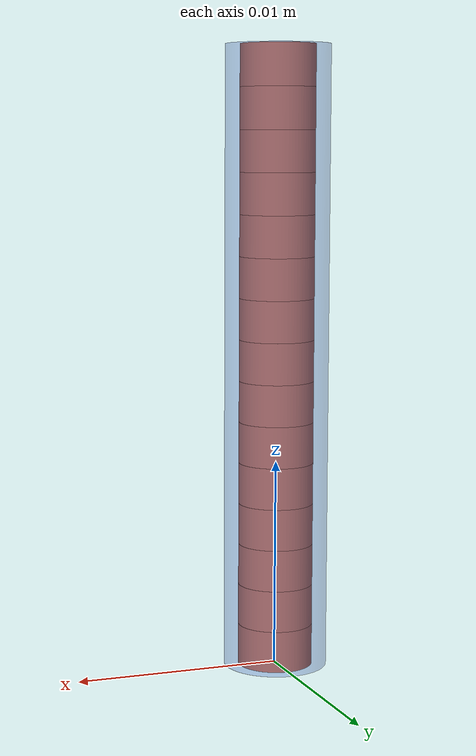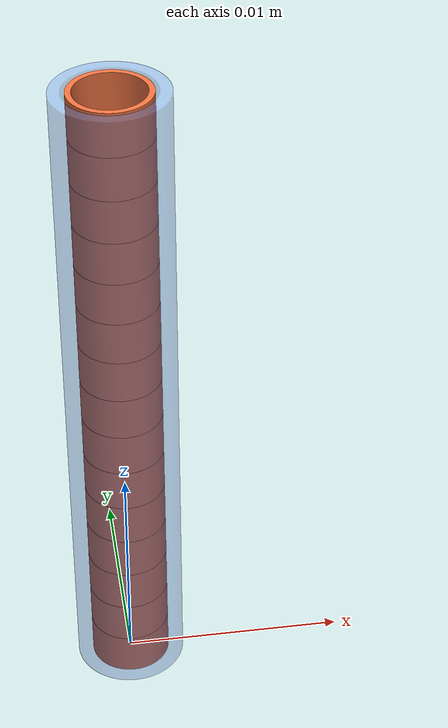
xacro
<?xml version="1.0"?>
        <robot xmlns:xacro="http://www.ros.org/wiki/xacro" name="ctr">
          <xacro:property name="outer_length" value="0.030000"/>
          <xacro:property name="inner_length" value="0.030000"/>
          <xacro:property name="outer_inner_diameter" value="0.004000"/>
          <xacro:property name="outer_outer_diameter" value="0.005000"/>
          <xacro:property name="inner_inner_diameter" value="0.003100"/>
          <xacro:property name="inner_outer_diameter" value="0.003600"/>
          <xacro:property name="curvature_radius" value="0.050000"/>
          <xacro:property name="inner_segments" value="15"/>
          <xacro:property name="bend_angle_per_joint" value="0.04000000"/>

          <link name="world"/>

          <link name="outer_tube_link">
            <visual>
              <origin xyz="0 0 0" rpy="0 0 0"/>
              <geometry>
                <mesh filename="package://ctr_package/meshes/outer_tube.stl" scale="1 1 1"/>
              </geometry>
              <material name="outer_mat">
                <color rgba="0.35 0.55 0.95 0.35"/>
              </material>
            </visual>
            <collision>
              <origin xyz="0 0 0" rpy="0 0 0"/>
              <geometry>
                <mesh filename="package://ctr_package/meshes/outer_tube.stl" scale="1 1 1"/>
              </geometry>
            </collision>
            <inertial>
              <mass value="0.01"/>
              <origin xyz="0 0 0.015000" rpy="0 0 0"/>
              <inertia ixx="1e-4" iyy="1e-4" izz="1e-4" ixy="0" ixz="0" iyz="0"/>
            </inertial>
          </link>

          <link name="base_x_link"/>
          <link name="base_y_link"/>
          <link name="base_z_link"/>
          <link name="inner_carriage_link"/>
          <link name="inner_base_link"/>

          <joint name="base_x_joint" type="prismatic">
            <parent link="world"/>
            <child link="base_x_link"/>
            <origin xyz="0 0 0" rpy="0 0 0"/>
            <axis xyz="1 0 0"/>
            <limit lower="-2.0" upper="2.0" effort="10.0" velocity="0.2"/>
          </joint>

          <joint name="base_y_joint" type="prismatic">
            <parent link="base_x_link"/>
            <child link="base_y_link"/>
            <origin xyz="0 0 0" rpy="0 0 0"/>
            <axis xyz="0 1 0"/>
            <limit lower="-2.0" upper="2.0" effort="10.0" velocity="0.2"/>
          </joint>

          <joint name="base_z_joint" type="prismatic">
            <parent link="base_y_link"/>
            <child link="base_z_link"/>
            <origin xyz="0 0 0" rpy="0 0 0"/>
            <axis xyz="0 0 1"/>
            <limit lower="-2.0" upper="2.0" effort="10.0" velocity="0.2"/>
          </joint>

          <joint name="base_to_outer" type="fixed">
            <parent link="base_z_link"/>
            <child link="outer_tube_link"/>
            <origin xyz="0 0 0" rpy="0 0 0"/>
          </joint>

          <joint name="inner_insertion_joint" type="prismatic">
            <parent link="outer_tube_link"/>
            <child link="inner_carriage_link"/>
            <origin xyz="0 0 0" rpy="0 0 0"/>
            <axis xyz="0 0 1"/>
            <limit lower="0.0" upper="0.03" effort="10.0" velocity="0.05"/>
          </joint>

          <joint name="inner_rotation_joint" type="revolute">
            <parent link="inner_carriage_link"/>
            <child link="inner_base_link"/>
            <origin xyz="0 0 0" rpy="0 0 0"/>
            <axis xyz="0 0 1"/>
            <limit lower="-3.14159" upper="3.14159" effort="1.0" velocity="2.0"/>
          </joint>

          <link name="inner_segment_1">
            <visual>
              <origin xyz="0 0 0" rpy="0 0 0"/>
              <geometry>
                <mesh filename="package://ctr_package/meshes/inner_segment.stl" scale="1 1 1"/>
              </geometry>
              <material name="inner_mat">
                <color rgba="0.95 0.45 0.25 1.0"/>
              </material>
            </visual>
            <collision>
              <origin xyz="0 0 0" rpy="0 0 0"/>
              <geometry>
                <mesh filename="package://ctr_package/meshes/inner_segment.stl" scale="1 1 1"/>
              </geometry>
            </collision>
            <inertial>
              <mass value="0.0007"/>
              <origin xyz="0 0 0" rpy="0 0 0"/>
              <inertia ixx="1e-6" iyy="1e-6" izz="1e-6" ixy="0" ixz="0" iyz="0"/>
            </inertial>
          </link>

          <link name="inner_segment_2">
            <visual>
              <origin xyz="0 0 0" rpy="0 0 0"/>
              <geometry>
                <mesh filename="package://ctr_package/meshes/inner_segment.stl" scale="1 1 1"/>
              </geometry>
              <material name="inner_mat">
                <color rgba="0.95 0.45 0.25 1.0"/>
              </material>
            </visual>
            <collision>
              <origin xyz="0 0 0" rpy="0 0 0"/>
              <geometry>
                <mesh filename="package://ctr_package/meshes/inner_segment.stl" scale="1 1 1"/>
              </geometry>
            </collision>
            <inertial>
              <mass value="0.0007"/>
              <origin xyz="0 0 0" rpy="0 0 0"/>
              <inertia ixx="1e-6" iyy="1e-6" izz="1e-6" ixy="0" ixz="0" iyz="0"/>
            </inertial>
          </link>

          <link name="inner_segment_3">
            <visual>
              <origin xyz="0 0 0" rpy="0 0 0"/>
              <geometry>
                <mesh filename="package://ctr_package/meshes/inner_segment.stl" scale="1 1 1"/>
              </geometry>
              <material name="inner_mat">
                <color rgba="0.95 0.45 0.25 1.0"/>
              </material>
            </visual>
            <collision>
              <origin xyz="0 0 0" rpy="0 0 0"/>
              <geometry>
                <mesh filename="package://ctr_package/meshes/inner_segment.stl" scale="1 1 1"/>
              </geometry>
            </collision>
            <inertial>
              <mass value="0.0007"/>
              <origin xyz="0 0 0" rpy="0 0 0"/>
              <inertia ixx="1e-6" iyy="1e-6" izz="1e-6" ixy="0" ixz="0" iyz="0"/>
            </inertial>
          </link>

          <link name="inner_segment_4">
            <visual>
              <origin xyz="0 0 0" rpy="0 0 0"/>
              <geometry>
                <mesh filename="package://ctr_package/meshes/inner_segment.stl" scale="1 1 1"/>
              </geometry>
              <material name="inner_mat">
                <color rgba="0.95 0.45 0.25 1.0"/>
              </material>
            </visual>
            <collision>
              <origin xyz="0 0 0" rpy="0 0 0"/>
              <geometry>
                <mesh filename="package://ctr_package/meshes/inner_segment.stl" scale="1 1 1"/>
              </geometry>
            </collision>
            <inertial>
              <mass value="0.0007"/>
              <origin xyz="0 0 0" rpy="0 0 0"/>
              <inertia ixx="1e-6" iyy="1e-6" izz="1e-6" ixy="0" ixz="0" iyz="0"/>
            </inertial>
          </link>

          <link name="inner_segment_5">
            <visual>
              <origin xyz="0 0 0" rpy="0 0 0"/>
              <geometry>
                <mesh filename="package://ctr_package/meshes/inner_segment.stl" scale="1 1 1"/>
              </geometry>
              <material name="inner_mat">
                <color rgba="0.95 0.45 0.25 1.0"/>
              </material>
            </visual>
            <collision>
              <origin xyz="0 0 0" rpy="0 0 0"/>
              <geometry>
                <mesh filename="package://ctr_package/meshes/inner_segment.stl" scale="1 1 1"/>
              </geometry>
            </collision>
            <inertial>
              <mass value="0.0007"/>
              <origin xyz="0 0 0" rpy="0 0 0"/>
              <inertia ixx="1e-6" iyy="1e-6" izz="1e-6" ixy="0" ixz="0" iyz="0"/>
            </inertial>
          </link>

          <link name="inner_segment_6">
            <visual>
              <origin xyz="0 0 0" rpy="0 0 0"/>
              <geometry>
                <mesh filename="package://ctr_package/meshes/inner_segment.stl" scale="1 1 1"/>
              </geometry>
              <material name="inner_mat">
                <color rgba="0.95 0.45 0.25 1.0"/>
              </material>
            </visual>
            <collision>
              <origin xyz="0 0 0" rpy="0 0 0"/>
              <geometry>
                <mesh filename="package://ctr_package/meshes/inner_segment.stl" scale="1 1 1"/>
              </geometry>
            </collision>
            <inertial>
              <mass value="0.0007"/>
              <origin xyz="0 0 0" rpy="0 0 0"/>
              <inertia ixx="1e-6" iyy="1e-6" izz="1e-6" ixy="0" ixz="0" iyz="0"/>
            </inertial>
          </link>

          <link name="inner_segment_7">
            <visual>
              <origin xyz="0 0 0" rpy="0 0 0"/>
              <geometry>
                <mesh filename="package://ctr_package/meshes/inner_segment.stl" scale="1 1 1"/>
              </geometry>
              <material name="inner_mat">
                <color rgba="0.95 0.45 0.25 1.0"/>
              </material>
            </visual>
            <collision>
              <origin xyz="0 0 0" rpy="0 0 0"/>
              <geometry>
                <mesh filename="package://ctr_package/meshes/inner_segment.stl" scale="1 1 1"/>
              </geometry>
            </collision>
            <inertial>
              <mass value="0.0007"/>
              <origin xyz="0 0 0" rpy="0 0 0"/>
              <inertia ixx="1e-6" iyy="1e-6" izz="1e-6" ixy="0" ixz="0" iyz="0"/>
            </inertial>
          </link>

          <link name="inner_segment_8">
            <visual>
              <origin xyz="0 0 0" rpy="0 0 0"/>
              <geometry>
                <mesh filename="package://ctr_package/meshes/inner_segment.stl" scale="1 1 1"/>
              </geometry>
              <material name="inner_mat">
                <color rgba="0.95 0.45 0.25 1.0"/>
              </material>
            </visual>
            <collision>
              <origin xyz="0 0 0" rpy="0 0 0"/>
              <geometry>
                <mesh filename="package://ctr_package/meshes/inner_segment.stl" scale="1 1 1"/>
              </geometry>
            </collision>
            <inertial>
              <mass value="0.0007"/>
              <origin xyz="0 0 0" rpy="0 0 0"/>
              <inertia ixx="1e-6" iyy="1e-6" izz="1e-6" ixy="0" ixz="0" iyz="0"/>
            </inertial>
          </link>

          <link name="inner_segment_9">
            <visual>
              <origin xyz="0 0 0" rpy="0 0 0"/>
              <geometry>
                <mesh filename="package://ctr_package/meshes/inner_segment.stl" scale="1 1 1"/>
              </geometry>
              <material name="inner_mat">
                <color rgba="0.95 0.45 0.25 1.0"/>
              </material>
            </visual>
            <collision>
              <origin xyz="0 0 0" rpy="0 0 0"/>
              <geometry>
                <mesh filename="package://ctr_package/meshes/inner_segment.stl" scale="1 1 1"/>
              </geometry>
            </collision>
            <inertial>
              <mass value="0.0007"/>
              <origin xyz="0 0 0" rpy="0 0 0"/>
              <inertia ixx="1e-6" iyy="1e-6" izz="1e-6" ixy="0" ixz="0" iyz="0"/>
            </inertial>
          </link>

          <link name="inner_segment_10">
            <visual>
              <origin xyz="0 0 0" rpy="0 0 0"/>
              <geometry>
                <mesh filename="package://ctr_package/meshes/inner_segment.stl" scale="1 1 1"/>
              </geometry>
              <material name="inner_mat">
                <color rgba="0.95 0.45 0.25 1.0"/>
              </material>
            </visual>
            <collision>
              <origin xyz="0 0 0" rpy="0 0 0"/>
              <geometry>
                <mesh filename="package://ctr_package/meshes/inner_segment.stl" scale="1 1 1"/>
              </geometry>
            </collision>
            <inertial>
              <mass value="0.0007"/>
              <origin xyz="0 0 0" rpy="0 0 0"/>
              <inertia ixx="1e-6" iyy="1e-6" izz="1e-6" ixy="0" ixz="0" iyz="0"/>
            </inertial>
          </link>

          <link name="inner_segment_11">
            <visual>
              <origin xyz="0 0 0" rpy="0 0 0"/>
              <geometry>
                <mesh filename="package://ctr_package/meshes/inner_segment.stl" scale="1 1 1"/>
              </geometry>
              <material name="inner_mat">
                <color rgba="0.95 0.45 0.25 1.0"/>
              </material>
            </visual>
            <collision>
              <origin xyz="0 0 0" rpy="0 0 0"/>
              <geometry>
                <mesh filename="package://ctr_package/meshes/inner_segment.stl" scale="1 1 1"/>
              </geometry>
            </collision>
            <inertial>
              <mass value="0.0007"/>
              <origin xyz="0 0 0" rpy="0 0 0"/>
              <inertia ixx="1e-6" iyy="1e-6" izz="1e-6" ixy="0" ixz="0" iyz="0"/>
            </inertial>
          </link>

          <link name="inner_segment_12">
            <visual>
              <origin xyz="0 0 0" rpy="0 0 0"/>
              <geometry>
                <mesh filename="package://ctr_package/meshes/inner_segment.stl" scale="1 1 1"/>
              </geometry>
              <material name="inner_mat">
                <color rgba="0.95 0.45 0.25 1.0"/>
              </material>
            </visual>
            <collision>
              <origin xyz="0 0 0" rpy="0 0 0"/>
              <geometry>
                <mesh filename="package://ctr_package/meshes/inner_segment.stl" scale="1 1 1"/>
              </geometry>
            </collision>
            <inertial>
              <mass value="0.0007"/>
              <origin xyz="0 0 0" rpy="0 0 0"/>
              <inertia ixx="1e-6" iyy="1e-6" izz="1e-6" ixy="0" ixz="0" iyz="0"/>
            </inertial>
          </link>

          <link name="inner_segment_13">
            <visual>
              <origin xyz="0 0 0" rpy="0 0 0"/>
              <geometry>
                <mesh filename="package://ctr_package/meshes/inner_segment.stl" scale="1 1 1"/>
              </geometry>
              <material name="inner_mat">
                <color rgba="0.95 0.45 0.25 1.0"/>
              </material>
            </visual>
            <collision>
              <origin xyz="0 0 0" rpy="0 0 0"/>
              <geometry>
                <mesh filename="package://ctr_package/meshes/inner_segment.stl" scale="1 1 1"/>
              </geometry>
            </collision>
            <inertial>
              <mass value="0.0007"/>
              <origin xyz="0 0 0" rpy="0 0 0"/>
              <inertia ixx="1e-6" iyy="1e-6" izz="1e-6" ixy="0" ixz="0" iyz="0"/>
            </inertial>
          </link>

          <link name="inner_segment_14">
            <visual>
              <origin xyz="0 0 0" rpy="0 0 0"/>
              <geometry>
                <mesh filename="package://ctr_package/meshes/inner_segment.stl" scale="1 1 1"/>
              </geometry>
              <material name="inner_mat">
                <color rgba="0.95 0.45 0.25 1.0"/>
              </material>
            </visual>
            <collision>
              <origin xyz="0 0 0" rpy="0 0 0"/>
              <geometry>
                <mesh filename="package://ctr_package/meshes/inner_segment.stl" scale="1 1 1"/>
              </geometry>
            </collision>
            <inertial>
              <mass value="0.0007"/>
              <origin xyz="0 0 0" rpy="0 0 0"/>
              <inertia ixx="1e-6" iyy="1e-6" izz="1e-6" ixy="0" ixz="0" iyz="0"/>
            </inertial>
          </link>

          <link name="inner_segment_15">
            <visual>
              <origin xyz="0 0 0" rpy="0 0 0"/>
              <geometry>
                <mesh filename="package://ctr_package/meshes/inner_segment.stl" scale="1 1 1"/>
              </geometry>
              <material name="inner_mat">
                <color rgba="0.95 0.45 0.25 1.0"/>
              </material>
            </visual>
            <collision>
              <origin xyz="0 0 0" rpy="0 0 0"/>
              <geometry>
                <mesh filename="package://ctr_package/meshes/inner_segment.stl" scale="1 1 1"/>
              </geometry>
            </collision>
            <inertial>
              <mass value="0.0007"/>
              <origin xyz="0 0 0" rpy="0 0 0"/>
              <inertia ixx="1e-6" iyy="1e-6" izz="1e-6" ixy="0" ixz="0" iyz="0"/>
            </inertial>
          </link>

          <joint name="inner_bend_joint_1" type="revolute">
            <parent link="inner_base_link"/>
            <child link="inner_segment_1"/>
            <origin xyz="0 0 0.000000" rpy="0 0 0"/>
            <axis xyz="0 1 0"/>
            <limit lower="-0.04000000" upper="0.04000000" effort="2.0" velocity="1.0"/>
          </joint>

          <joint name="inner_bend_joint_2" type="revolute">
            <parent link="inner_segment_1"/>
            <child link="inner_segment_2"/>
            <origin xyz="0 0 0.002000" rpy="0 0 0"/>
            <axis xyz="0 1 0"/>
            <limit lower="-0.04000000" upper="0.04000000" effort="2.0" velocity="1.0"/>
          </joint>

          <joint name="inner_bend_joint_3" type="revolute">
            <parent link="inner_segment_2"/>
            <child link="inner_segment_3"/>
            <origin xyz="0 0 0.002000" rpy="0 0 0"/>
            <axis xyz="0 1 0"/>
            <limit lower="-0.04000000" upper="0.04000000" effort="2.0" velocity="1.0"/>
          </joint>

          <joint name="inner_bend_joint_4" type="revolute">
            <parent link="inner_segment_3"/>
            <child link="inner_segment_4"/>
            <origin xyz="0 0 0.002000" rpy="0 0 0"/>
            <axis xyz="0 1 0"/>
            <limit lower="-0.04000000" upper="0.04000000" effort="2.0" velocity="1.0"/>
          </joint>

          <joint name="inner_bend_joint_5" type="revolute">
            <parent link="inner_segment_4"/>
            <child link="inner_segment_5"/>
            <origin xyz="0 0 0.002000" rpy="0 0 0"/>
            <axis xyz="0 1 0"/>
            <limit lower="-0.04000000" upper="0.04000000" effort="2.0" velocity="1.0"/>
          </joint>

          <joint name="inner_bend_joint_6" type="revolute">
            <parent link="inner_segment_5"/>
            <child link="inner_segment_6"/>
            <origin xyz="0 0 0.002000" rpy="0 0 0"/>
            <axis xyz="0 1 0"/>
            <limit lower="-0.04000000" upper="0.04000000" effort="2.0" velocity="1.0"/>
          </joint>

          <joint name="inner_bend_joint_7" type="revolute">
            <parent link="inner_segment_6"/>
            <child link="inner_segment_7"/>
            <origin xyz="0 0 0.002000" rpy="0 0 0"/>
            <axis xyz="0 1 0"/>
            <limit lower="-0.04000000" upper="0.04000000" effort="2.0" velocity="1.0"/>
          </joint>

          <joint name="inner_bend_joint_8" type="revolute">
            <parent link="inner_segment_7"/>
            <child link="inner_segment_8"/>
            <origin xyz="0 0 0.002000" rpy="0 0 0"/>
            <axis xyz="0 1 0"/>
            <limit lower="-0.04000000" upper="0.04000000" effort="2.0" velocity="1.0"/>
          </joint>

          <joint name="inner_bend_joint_9" type="revolute">
            <parent link="inner_segment_8"/>
            <child link="inner_segment_9"/>
            <origin xyz="0 0 0.002000" rpy="0 0 0"/>
            <axis xyz="0 1 0"/>
            <limit lower="-0.04000000" upper="0.04000000" effort="2.0" velocity="1.0"/>
          </joint>

          <joint name="inner_bend_joint_10" type="revolute">
            <parent link="inner_segment_9"/>
            <child link="inner_segment_10"/>
            <origin xyz="0 0 0.002000" rpy="0 0 0"/>
            <axis xyz="0 1 0"/>
            <limit lower="-0.04000000" upper="0.04000000" effort="2.0" velocity="1.0"/>
          </joint>

          <joint name="inner_bend_joint_11" type="revolute">
            <parent link="inner_segment_10"/>
            <child link="inner_segment_11"/>
            <origin xyz="0 0 0.002000" rpy="0 0 0"/>
            <axis xyz="0 1 0"/>
            <limit lower="-0.04000000" upper="0.04000000" effort="2.0" velocity="1.0"/>
          </joint>

          <joint name="inner_bend_joint_12" type="revolute">
            <parent link="inner_segment_11"/>
            <child link="inner_segment_12"/>
            <origin xyz="0 0 0.002000" rpy="0 0 0"/>
            <axis xyz="0 1 0"/>
            <limit lower="-0.04000000" upper="0.04000000" effort="2.0" velocity="1.0"/>
          </joint>

          <joint name="inner_bend_joint_13" type="revolute">
            <parent link="inner_segment_12"/>
            <child link="inner_segment_13"/>
            <origin xyz="0 0 0.002000" rpy="0 0 0"/>
            <axis xyz="0 1 0"/>
            <limit lower="-0.04000000" upper="0.04000000" effort="2.0" velocity="1.0"/>
          </joint>

          <joint name="inner_bend_joint_14" type="revolute">
            <parent link="inner_segment_13"/>
            <child link="inner_segment_14"/>
            <origin xyz="0 0 0.002000" rpy="0 0 0"/>
            <axis xyz="0 1 0"/>
            <limit lower="-0.04000000" upper="0.04000000" effort="2.0" velocity="1.0"/>
          </joint>

          <joint name="inner_bend_joint_15" type="revolute">
            <parent link="inner_segment_14"/>
            <child link="inner_segment_15"/>
            <origin xyz="0 0 0.002000" rpy="0 0 0"/>
            <axis xyz="0 1 0"/>
            <limit lower="-0.04000000" upper="0.04000000" effort="2.0" velocity="1.0"/>
          </joint>

        </robot>
